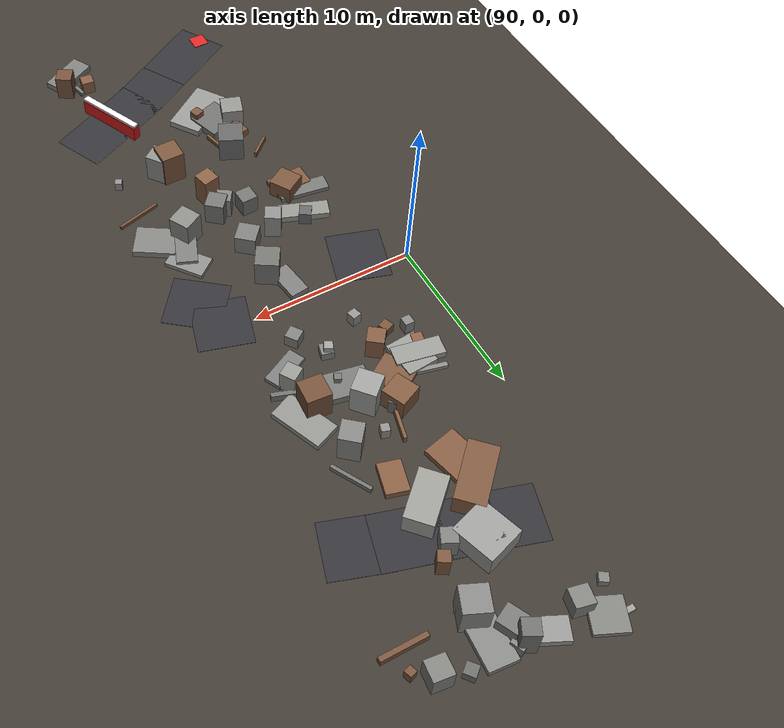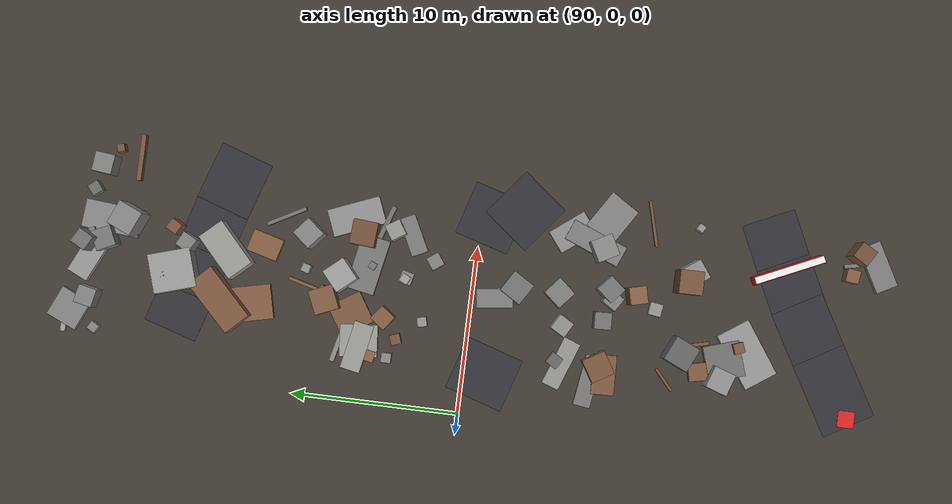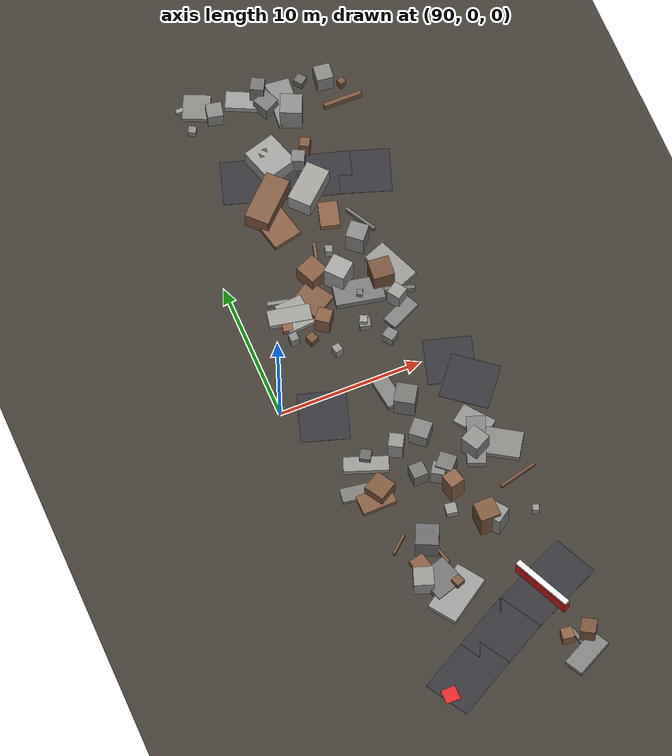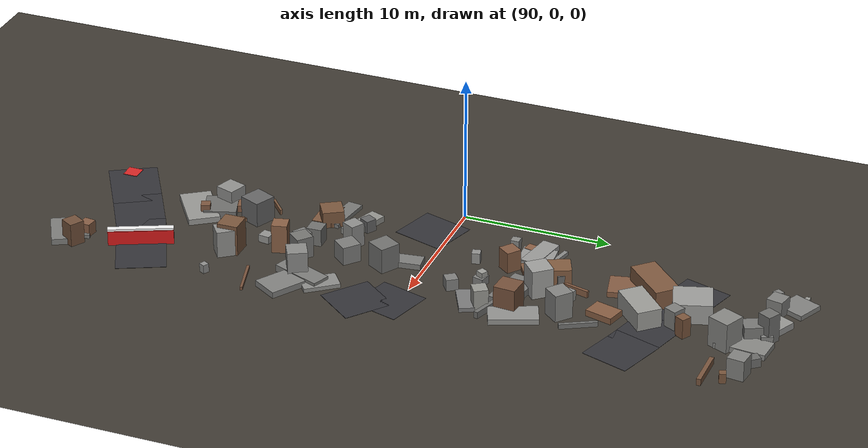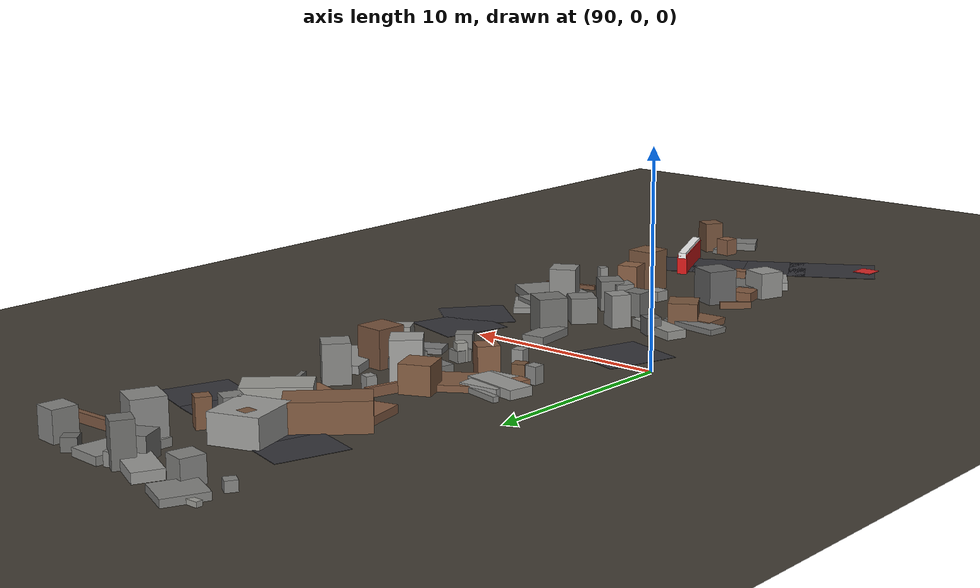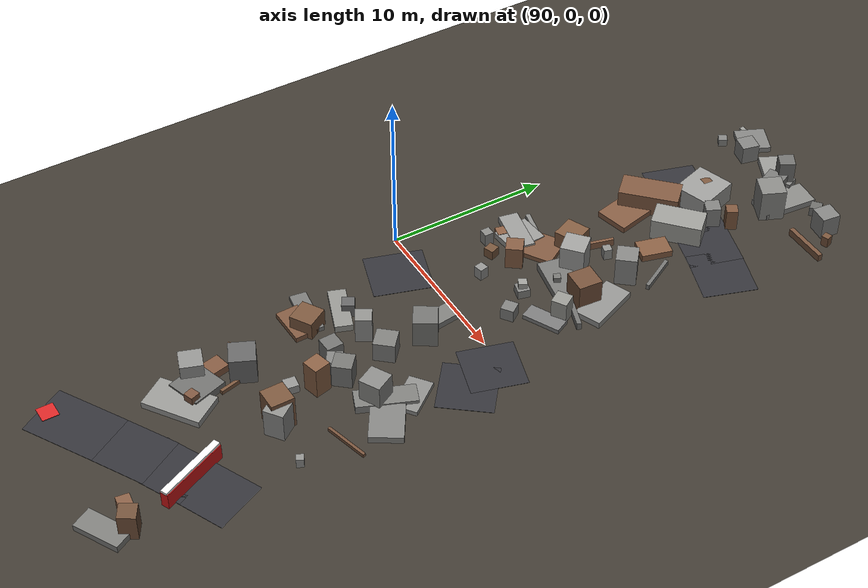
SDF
<sdf version="1.6">
 <world name="navitas_arena">
  <model name="ground_plane">
   <static>true</static>
   <link name="link">
    <collision name="collision">
     <geometry><plane><normal>0 0 1</normal><size>400 400</size></plane></geometry>
     <surface><friction><ode><mu>0.620</mu><mu2>0.620</mu2></ode></friction></surface>
    </collision>
    <visual name="visual">
     <cast_shadows>false</cast_shadows>
     <geometry><plane><normal>0 0 1</normal><size>400 400</size></plane></geometry>
     <material><ambient>0.250 0.230 0.200 1</ambient><diffuse>0.250 0.230 0.200 1</diffuse></material>
    </visual>
   </link>
  </model>
  <model name="road_zor_2_9">
   <static>true</static>
   <pose>92.559 -1.278 0.040 0 0 1.267</pose>
   <link name="link">
    <collision name="col"><geometry><box><size>3.578 3.280 0.020</size></box></geometry></collision>
    <visual name="vis">
     <geometry><box><size>3.578 3.280 0.020</size></box></geometry>
     <material><ambient>0.20 0.20 0.22 1</ambient><diffuse>0.20 0.20 0.22 1</diffuse></material>
    </visual>
   </link>
  </model>
  <model name="road_zor_3_0">
   <static>true</static>
   <pose>94.114 -22.070 0.040 0 0 0.527</pose>
   <link name="link">
    <collision name="col"><geometry><box><size>4.596 3.280 0.020</size></box></geometry></collision>
    <visual name="vis">
     <geometry><box><size>4.596 3.280 0.020</size></box></geometry>
     <material><ambient>0.20 0.20 0.22 1</ambient><diffuse>0.20 0.20 0.22 1</diffuse></material>
    </visual>
   </link>
  </model>
  <model name="road_zor_3_1">
   <static>true</static>
   <pose>97.148 -20.320 0.040 0 0 0.519</pose>
   <link name="link">
    <collision name="col"><geometry><box><size>4.208 3.280 0.020</size></box></geometry></collision>
    <visual name="vis">
     <geometry><box><size>4.208 3.280 0.020</size></box></geometry>
     <material><ambient>0.20 0.20 0.22 1</ambient><diffuse>0.20 0.20 0.22 1</diffuse></material>
    </visual>
   </link>
  </model>
  <model name="road_zor_3_2">
   <static>true</static>
   <pose>99.743 -18.930 0.040 0 0 0.457</pose>
   <link name="link">
    <collision name="col"><geometry><box><size>3.484 3.280 0.020</size></box></geometry></collision>
    <visual name="vis">
     <geometry><box><size>3.484 3.280 0.020</size></box></geometry>
     <material><ambient>0.20 0.20 0.22 1</ambient><diffuse>0.20 0.20 0.22 1</diffuse></material>
    </visual>
   </link>
  </model>
  <model name="road_zor_3_3">
   <static>true</static>
   <pose>102.188 -17.758 0.040 0 0 0.438</pose>
   <link name="link">
    <collision name="col"><geometry><box><size>3.738 3.280 0.020</size></box></geometry></collision>
    <visual name="vis">
     <geometry><box><size>3.738 3.280 0.020</size></box></geometry>
     <material><ambient>0.20 0.20 0.22 1</ambient><diffuse>0.20 0.20 0.22 1</diffuse></material>
    </visual>
   </link>
  </model>
  <model name="road_zor_3_11">
   <static>true</static>
   <pose>102.496 -2.556 0.040 0 0 2.472</pose>
   <link name="link">
    <collision name="col"><geometry><box><size>3.407 3.280 0.020</size></box></geometry></collision>
    <visual name="vis">
     <geometry><box><size>3.407 3.280 0.020</size></box></geometry>
     <material><ambient>0.20 0.20 0.22 1</ambient><diffuse>0.20 0.20 0.22 1</diffuse></material>
    </visual>
   </link>
  </model>
  <model name="road_zor_3_12">
   <static>true</static>
   <pose>101.854 -0.611 0.040 0 0 1.287</pose>
   <link name="link">
    <collision name="col"><geometry><box><size>3.331 3.280 0.020</size></box></geometry></collision>
    <visual name="vis">
     <geometry><box><size>3.331 3.280 0.020</size></box></geometry>
     <material><ambient>0.20 0.20 0.22 1</ambient><diffuse>0.20 0.20 0.22 1</diffuse></material>
    </visual>
   </link>
  </model>
  <model name="road_zor_3_20">
   <static>true</static>
   <pose>102.145 14.853 0.040 0 0 2.818</pose>
   <link name="link">
    <collision name="col"><geometry><box><size>3.534 3.280 0.020</size></box></geometry></collision>
    <visual name="vis">
     <geometry><box><size>3.534 3.280 0.020</size></box></geometry>
     <material><ambient>0.20 0.20 0.22 1</ambient><diffuse>0.20 0.20 0.22 1</diffuse></material>
    </visual>
   </link>
  </model>
  <model name="road_zor_3_21">
   <static>true</static>
   <pose>99.566 15.657 0.040 0 0 2.859</pose>
   <link name="link">
    <collision name="col"><geometry><box><size>3.670 3.280 0.020</size></box></geometry></collision>
    <visual name="vis">
     <geometry><box><size>3.670 3.280 0.020</size></box></geometry>
     <material><ambient>0.20 0.20 0.22 1</ambient><diffuse>0.20 0.20 0.22 1</diffuse></material>
    </visual>
   </link>
  </model>
  <model name="road_zor_3_22">
   <static>true</static>
   <pose>96.932 16.409 0.040 0 0 2.867</pose>
   <link name="link">
    <collision name="col"><geometry><box><size>3.610 3.280 0.020</size></box></geometry></collision>
    <visual name="vis">
     <geometry><box><size>3.610 3.280 0.020</size></box></geometry>
     <material><ambient>0.20 0.20 0.22 1</ambient><diffuse>0.20 0.20 0.22 1</diffuse></material>
    </visual>
   </link>
  </model>
  <model name="road_zor_3_23">
   <static>true</static>
   <pose>94.458 17.138 0.040 0 0 2.842</pose>
   <link name="link">
    <collision name="col"><geometry><box><size>3.349 3.280 0.020</size></box></geometry></collision>
    <visual name="vis">
     <geometry><box><size>3.349 3.280 0.020</size></box></geometry>
     <material><ambient>0.20 0.20 0.22 1</ambient><diffuse>0.20 0.20 0.22 1</diffuse></material>
    </visual>
   </link>
  </model>
  <model name="bar_zor_3">
   <static>true</static>
   <pose>100.903 -18.360 0.500 0 0 2.000</pose>
   <link name="link">
    <collision name="col"><geometry><box><size>4.280 0.500 1.000</size></box></geometry></collision>
    <visual name="vis">
     <geometry><box><size>4.280 0.500 1.000</size></box></geometry>
     <material><ambient>0.85 0.10 0.10 1</ambient><diffuse>0.85 0.10 0.10 1</diffuse></material>
    </visual>
   </link>
  </model>
  <model name="bar_zor_3b">
   <static>true</static>
   <pose>100.903 -18.360 1.000 0 0 2.000</pose>
   <link name="link">
    <collision name="col"><geometry><box><size>4.280 0.400 0.300</size></box></geometry></collision>
    <visual name="vis">
     <geometry><box><size>4.280 0.400 0.300</size></box></geometry>
     <material><ambient>0.95 0.95 0.95 1</ambient><diffuse>0.95 0.95 0.95 1</diffuse></material>
    </visual>
   </link>
  </model>
  <model name="blk_zor_3_2_0">
   <static>true</static>
   <pose>99.007 17.815 0.675 0 0 1.040</pose>
   <link name="link">
    <collision name="col"><geometry><box><size>0.687 0.687 1.350</size></box></geometry></collision>
    <visual name="vis">
     <geometry><box><size>0.687 0.687 1.350</size></box></geometry>
     <material><ambient>0.49 0.34 0.24 1</ambient><diffuse>0.49 0.34 0.24 1</diffuse></material>
    </visual>
   </link>
  </model>
  <model name="blk_zor_3_2_1">
   <static>true</static>
   <pose>96.085 18.061 0.675 0 0 1.500</pose>
   <link name="link">
    <collision name="col"><geometry><box><size>0.590 0.590 1.350</size></box></geometry></collision>
    <visual name="vis">
     <geometry><box><size>0.590 0.590 1.350</size></box></geometry>
     <material><ambient>0.48 0.34 0.24 1</ambient><diffuse>0.48 0.34 0.24 1</diffuse></material>
    </visual>
   </link>
  </model>
  <model name="blk_zor_3_2_2">
   <static>true</static>
   <pose>98.179 17.000 0.675 0 0 1.103</pose>
   <link name="link">
    <collision name="col"><geometry><box><size>0.901 0.901 1.350</size></box></geometry></collision>
    <visual name="vis">
     <geometry><box><size>0.901 0.901 1.350</size></box></geometry>
     <material><ambient>0.50 0.50 0.49 1</ambient><diffuse>0.50 0.50 0.49 1</diffuse></material>
    </visual>
   </link>
  </model>
  <model name="blk_zor_3_2_3">
   <static>true</static>
   <pose>98.016 14.685 0.675 0 0 0.737</pose>
   <link name="link">
    <collision name="col"><geometry><box><size>3.020 1.657 1.350</size></box></geometry></collision>
    <visual name="vis">
     <geometry><box><size>3.020 1.657 1.350</size></box></geometry>
     <material><ambient>0.61 0.61 0.59 1</ambient><diffuse>0.61 0.61 0.59 1</diffuse></material>
    </visual>
   </link>
  </model>
  <model name="blk_zor_3_2_4">
   <static>true</static>
   <pose>96.411 17.640 0.675 0 0 1.870</pose>
   <link name="link">
    <collision name="col"><geometry><box><size>2.521 2.330 1.350</size></box></geometry></collision>
    <visual name="vis">
     <geometry><box><size>2.521 2.330 1.350</size></box></geometry>
     <material><ambient>0.61 0.61 0.60 1</ambient><diffuse>0.61 0.61 0.60 1</diffuse></material>
    </visual>
   </link>
  </model>
  <model name="blk_zor_3_2_5">
   <static>true</static>
   <pose>95.046 14.737 0.675 0 0 0.774</pose>
   <link name="link">
    <collision name="col"><geometry><box><size>3.614 1.718 1.350</size></box></geometry></collision>
    <visual name="vis">
     <geometry><box><size>3.614 1.718 1.350</size></box></geometry>
     <material><ambient>0.50 0.35 0.25 1</ambient><diffuse>0.50 0.35 0.25 1</diffuse></material>
    </visual>
   </link>
  </model>
  <model name="deb_zor_4">
   <static>true</static>
   <pose>102.830 20.455 0.226 0 0 3.139</pose>
   <link name="link">
    <collision name="col"><geometry><box><size>2.724 0.284 0.452</size></box></geometry></collision>
    <visual name="vis">
     <geometry><box><size>2.724 0.284 0.452</size></box></geometry>
     <material><ambient>0.47 0.33 0.24 1</ambient><diffuse>0.47 0.33 0.24 1</diffuse></material>
    </visual>
   </link>
  </model>
  <model name="deb_zor_5">
   <static>true</static>
   <pose>97.608 4.045 0.449 0 0 2.645</pose>
   <link name="link">
    <collision name="col"><geometry><box><size>0.514 0.514 0.899</size></box></geometry></collision>
    <visual name="vis">
     <geometry><box><size>0.514 0.514 0.899</size></box></geometry>
     <material><ambient>0.62 0.62 0.60 1</ambient><diffuse>0.62 0.62 0.60 1</diffuse></material>
    </visual>
   </link>
  </model>
  <model name="deb_zor_6">
   <static>true</static>
   <pose>92.904 -7.455 0.138 0 0 2.997</pose>
   <link name="link">
    <collision name="col"><geometry><box><size>3.080 1.018 0.275</size></box></geometry></collision>
    <visual name="vis">
     <geometry><box><size>3.080 1.018 0.275</size></box></geometry>
     <material><ambient>0.47 0.47 0.46 1</ambient><diffuse>0.47 0.47 0.46 1</diffuse></material>
    </visual>
   </link>
  </model>
  <model name="deb_zor_11">
   <static>true</static>
   <pose>97.630 -10.904 0.257 0 0 1.429</pose>
   <link name="link">
    <collision name="col"><geometry><box><size>0.754 0.754 0.514</size></box></geometry></collision>
    <visual name="vis">
     <geometry><box><size>0.754 0.754 0.514</size></box></geometry>
     <material><ambient>0.58 0.58 0.57 1</ambient><diffuse>0.58 0.58 0.57 1</diffuse></material>
    </visual>
   </link>
  </model>
  <model name="deb_zor_12">
   <static>true</static>
   <pose>93.540 -11.910 0.174 0 0 0.720</pose>
   <link name="link">
    <collision name="col"><geometry><box><size>1.564 0.159 0.348</size></box></geometry></collision>
    <visual name="vis">
     <geometry><box><size>1.564 0.159 0.348</size></box></geometry>
     <material><ambient>0.48 0.34 0.24 1</ambient><diffuse>0.48 0.34 0.24 1</diffuse></material>
    </visual>
   </link>
  </model>
  <model name="deb_zor_16">
   <static>true</static>
   <pose>100.007 -12.819 0.909 0 0 0.639</pose>
   <link name="link">
    <collision name="col"><geometry><box><size>1.208 1.208 1.818</size></box></geometry></collision>
    <visual name="vis">
     <geometry><box><size>1.208 1.208 1.818</size></box></geometry>
     <material><ambient>0.56 0.56 0.55 1</ambient><diffuse>0.56 0.56 0.55 1</diffuse></material>
    </visual>
   </link>
  </model>
  <model name="deb_zor_19">
   <static>true</static>
   <pose>102.680 -10.200 0.111 0 0 0.257</pose>
   <link name="link">
    <collision name="col"><geometry><box><size>2.739 0.179 0.222</size></box></geometry></collision>
    <visual name="vis">
     <geometry><box><size>2.739 0.179 0.222</size></box></geometry>
     <material><ambient>0.46 0.32 0.23 1</ambient><diffuse>0.46 0.32 0.23 1</diffuse></material>
    </visual>
   </link>
  </model>
  <model name="deb_zor_20">
   <static>true</static>
   <pose>95.804 8.615 0.669 0 0 1.978</pose>
   <link name="link">
    <collision name="col"><geometry><box><size>1.463 1.463 1.339</size></box></geometry></collision>
    <visual name="vis">
     <geometry><box><size>1.463 1.463 1.339</size></box></geometry>
     <material><ambient>0.51 0.36 0.25 1</ambient><diffuse>0.51 0.36 0.25 1</diffuse></material>
    </visual>
   </link>
  </model>
  <model name="deb_zor_22">
   <static>true</static>
   <pose>100.928 7.356 0.194 0 0 1.957</pose>
   <link name="link">
    <collision name="col"><geometry><box><size>3.211 1.651 0.389</size></box></geometry></collision>
    <visual name="vis">
     <geometry><box><size>3.211 1.651 0.389</size></box></geometry>
     <material><ambient>0.57 0.57 0.56 1</ambient><diffuse>0.57 0.57 0.56 1</diffuse></material>
    </visual>
   </link>
  </model>
  <model name="deb_zor_28">
   <static>true</static>
   <pose>96.591 -7.816 0.597 0 0 1.609</pose>
   <link name="link">
    <collision name="col"><geometry><box><size>1.005 1.005 1.194</size></box></geometry></collision>
    <visual name="vis">
     <geometry><box><size>1.005 1.005 1.194</size></box></geometry>
     <material><ambient>0.45 0.45 0.44 1</ambient><diffuse>0.45 0.45 0.44 1</diffuse></material>
    </visual>
   </link>
  </model>
  <model name="deb_zor_34">
   <static>true</static>
   <pose>93.757 -5.739 0.208 0 0 2.790</pose>
   <link name="link">
    <collision name="col"><geometry><box><size>3.011 1.058 0.415</size></box></geometry></collision>
    <visual name="vis">
     <geometry><box><size>3.011 1.058 0.415</size></box></geometry>
     <material><ambient>0.58 0.58 0.56 1</ambient><diffuse>0.58 0.58 0.56 1</diffuse></material>
    </visual>
   </link>
  </model>
  <model name="deb_zor_37">
   <static>true</static>
   <pose>95.074 -15.293 0.256 0 0 0.313</pose>
   <link name="link">
    <collision name="col"><geometry><box><size>2.137 2.176 0.511</size></box></geometry></collision>
    <visual name="vis">
     <geometry><box><size>2.137 2.176 0.511</size></box></geometry>
     <material><ambient>0.44 0.44 0.43 1</ambient><diffuse>0.44 0.44 0.43 1</diffuse></material>
    </visual>
   </link>
  </model>
  <model name="deb_zor_39">
   <static>true</static>
   <pose>93.729 -7.793 0.235 0 0 0.759</pose>
   <link name="link">
    <collision name="col"><geometry><box><size>0.724 0.724 0.469</size></box></geometry></collision>
    <visual name="vis">
     <geometry><box><size>0.724 0.724 0.469</size></box></geometry>
     <material><ambient>0.52 0.52 0.51 1</ambient><diffuse>0.52 0.52 0.51 1</diffuse></material>
    </visual>
   </link>
  </model>
  <model name="deb_zor_40">
   <static>true</static>
   <pose>96.606 22.870 0.226 0 0 2.699</pose>
   <link name="link">
    <collision name="col"><geometry><box><size>2.562 1.298 0.452</size></box></geometry></collision>
    <visual name="vis">
     <geometry><box><size>2.562 1.298 0.452</size></box></geometry>
     <material><ambient>0.59 0.59 0.58 1</ambient><diffuse>0.59 0.59 0.58 1</diffuse></material>
    </visual>
   </link>
  </model>
  <model name="deb_zor_48">
   <static>true</static>
   <pose>95.961 -16.003 0.440 0 0 1.926</pose>
   <link name="link">
    <collision name="col"><geometry><box><size>0.612 0.612 0.880</size></box></geometry></collision>
    <visual name="vis">
     <geometry><box><size>0.612 0.612 0.880</size></box></geometry>
     <material><ambient>0.49 0.34 0.25 1</ambient><diffuse>0.49 0.34 0.25 1</diffuse></material>
    </visual>
   </link>
  </model>
  <model name="deb_zor_52">
   <static>true</static>
   <pose>93.981 4.199 0.306 0 0 1.929</pose>
   <link name="link">
    <collision name="col"><geometry><box><size>0.616 0.616 0.611</size></box></geometry></collision>
    <visual name="vis">
     <geometry><box><size>0.616 0.616 0.611</size></box></geometry>
     <material><ambient>0.46 0.33 0.23 1</ambient><diffuse>0.46 0.33 0.23 1</diffuse></material>
    </visual>
   </link>
  </model>
  <model name="deb_zor_57">
   <static>true</static>
   <pose>100.446 11.480 0.160 0 0 2.069</pose>
   <link name="link">
    <collision name="col"><geometry><box><size>2.480 0.213 0.321</size></box></geometry></collision>
    <visual name="vis">
     <geometry><box><size>2.480 0.213 0.321</size></box></geometry>
     <material><ambient>0.45 0.45 0.44 1</ambient><diffuse>0.45 0.45 0.44 1</diffuse></material>
    </visual>
   </link>
  </model>
  <model name="deb_zor_63">
   <static>true</static>
   <pose>102.662 -7.720 0.209 0 0 2.579</pose>
   <link name="link">
    <collision name="col"><geometry><box><size>2.515 1.942 0.417</size></box></geometry></collision>
    <visual name="vis">
     <geometry><box><size>2.515 1.942 0.417</size></box></geometry>
     <material><ambient>0.51 0.51 0.50 1</ambient><diffuse>0.51 0.51 0.50 1</diffuse></material>
    </visual>
   </link>
  </model>
  <model name="deb_zor_66">
   <static>true</static>
   <pose>99.565 9.892 0.924 0 0 0.870</pose>
   <link name="link">
    <collision name="col"><geometry><box><size>1.260 1.260 1.847</size></box></geometry></collision>
    <visual name="vis">
     <geometry><box><size>1.260 1.260 1.847</size></box></geometry>
     <material><ambient>0.52 0.52 0.51 1</ambient><diffuse>0.52 0.52 0.51 1</diffuse></material>
    </visual>
   </link>
  </model>
  <model name="deb_zor_67">
   <static>true</static>
   <pose>101.101 -6.913 0.243 0 0 1.189</pose>
   <link name="link">
    <collision name="col"><geometry><box><size>3.487 1.273 0.485</size></box></geometry></collision>
    <visual name="vis">
     <geometry><box><size>3.487 1.273 0.485</size></box></geometry>
     <material><ambient>0.49 0.49 0.48 1</ambient><diffuse>0.49 0.49 0.48 1</diffuse></material>
    </visual>
   </link>
  </model>
  <model name="deb_zor_68">
   <static>true</static>
   <pose>93.853 -7.879 0.561 0 0 0.545</pose>
   <link name="link">
    <collision name="col"><geometry><box><size>1.437 1.437 1.122</size></box></geometry></collision>
    <visual name="vis">
     <geometry><box><size>1.437 1.437 1.122</size></box></geometry>
     <material><ambient>0.48 0.34 0.24 1</ambient><diffuse>0.48 0.34 0.24 1</diffuse></material>
    </visual>
   </link>
  </model>
  <model name="deb_zor_69">
   <static>true</static>
   <pose>93.121 7.623 0.128 0 0 2.907</pose>
   <link name="link">
    <collision name="col"><geometry><box><size>1.851 0.283 0.256</size></box></geometry></collision>
    <visual name="vis">
     <geometry><box><size>1.851 0.283 0.256</size></box></geometry>
     <material><ambient>0.54 0.54 0.53 1</ambient><diffuse>0.54 0.54 0.53 1</diffuse></material>
    </visual>
   </link>
  </model>
  <model name="deb_zor_72">
   <static>true</static>
   <pose>96.562 9.882 0.230 0 0 1.309</pose>
   <link name="link">
    <collision name="col"><geometry><box><size>2.072 0.191 0.460</size></box></geometry></collision>
    <visual name="vis">
     <geometry><box><size>2.072 0.191 0.460</size></box></geometry>
     <material><ambient>0.52 0.36 0.26 1</ambient><diffuse>0.52 0.36 0.26 1</diffuse></material>
    </visual>
   </link>
  </model>
  <model name="deb_zor_74">
   <static>true</static>
   <pose>102.197 22.360 0.702 0 0 3.022</pose>
   <link name="link">
    <collision name="col"><geometry><box><size>1.153 1.153 1.404</size></box></geometry></collision>
    <visual name="vis">
     <geometry><box><size>1.153 1.153 1.404</size></box></geometry>
     <material><ambient>0.51 0.51 0.50 1</ambient><diffuse>0.51 0.51 0.50 1</diffuse></material>
    </visual>
   </link>
  </model>
  <model name="deb_zor_78">
   <static>true</static>
   <pose>102.345 -22.510 0.797 0 0 2.604</pose>
   <link name="link">
    <collision name="col"><geometry><box><size>1.017 1.017 1.594</size></box></geometry></collision>
    <visual name="vis">
     <geometry><box><size>1.017 1.017 1.594</size></box></geometry>
     <material><ambient>0.45 0.32 0.23 1</ambient><diffuse>0.45 0.32 0.23 1</diffuse></material>
    </visual>
   </link>
  </model>
  <model name="deb_zor_81">
   <static>true</static>
   <pose>97.899 -2.554 0.865 0 0 1.018</pose>
   <link name="link">
    <collision name="col"><geometry><box><size>1.414 1.414 1.729</size></box></geometry></collision>
    <visual name="vis">
     <geometry><box><size>1.414 1.414 1.729</size></box></geometry>
     <material><ambient>0.45 0.45 0.44 1</ambient><diffuse>0.45 0.45 0.44 1</diffuse></material>
    </visual>
   </link>
  </model>
  <model name="deb_zor_85">
   <static>true</static>
   <pose>97.680 3.986 0.273 0 0 1.314</pose>
   <link name="link">
    <collision name="col"><geometry><box><size>0.743 0.743 0.547</size></box></geometry></collision>
    <visual name="vis">
     <geometry><box><size>0.743 0.743 0.547</size></box></geometry>
     <material><ambient>0.51 0.51 0.50 1</ambient><diffuse>0.51 0.51 0.50 1</diffuse></material>
    </visual>
   </link>
  </model>
  <model name="deb_zor_87">
   <static>true</static>
   <pose>97.858 -8.267 0.662 0 0 2.569</pose>
   <link name="link">
    <collision name="col"><geometry><box><size>0.915 0.915 1.325</size></box></geometry></collision>
    <visual name="vis">
     <geometry><box><size>0.915 0.915 1.325</size></box></geometry>
     <material><ambient>0.51 0.51 0.50 1</ambient><diffuse>0.51 0.51 0.50 1</diffuse></material>
    </visual>
   </link>
  </model>
  <model name="deb_zor_89">
   <static>true</static>
   <pose>101.765 -22.800 0.126 0 0 1.796</pose>
   <link name="link">
    <collision name="col"><geometry><box><size>2.128 0.241 0.252</size></box></geometry></collision>
    <visual name="vis">
     <geometry><box><size>2.128 0.241 0.252</size></box></geometry>
     <material><ambient>0.46 0.46 0.45 1</ambient><diffuse>0.46 0.46 0.45 1</diffuse></material>
    </visual>
   </link>
  </model>
  <model name="deb_zor_101">
   <static>true</static>
   <pose>99.968 6.694 0.911 0 0 1.492</pose>
   <link name="link">
    <collision name="col"><geometry><box><size>1.457 1.457 1.822</size></box></geometry></collision>
    <visual name="vis">
     <geometry><box><size>1.457 1.457 1.822</size></box></geometry>
     <material><ambient>0.46 0.32 0.23 1</ambient><diffuse>0.46 0.32 0.23 1</diffuse></material>
    </visual>
   </link>
  </model>
  <model name="deb_zor_102">
   <static>true</static>
   <pose>95.233 -12.573 0.845 0 0 1.143</pose>
   <link name="link">
    <collision name="col"><geometry><box><size>1.530 1.530 1.690</size></box></geometry></collision>
    <visual name="vis">
     <geometry><box><size>1.530 1.530 1.690</size></box></geometry>
     <material><ambient>0.40 0.40 0.40 1</ambient><diffuse>0.40 0.40 0.40 1</diffuse></material>
    </visual>
   </link>
  </model>
  <model name="deb_zor_104">
   <static>true</static>
   <pose>95.752 -13.197 0.130 0 0 1.815</pose>
   <link name="link">
    <collision name="col"><geometry><box><size>2.333 0.197 0.259</size></box></geometry></collision>
    <visual name="vis">
     <geometry><box><size>2.333 0.197 0.259</size></box></geometry>
     <material><ambient>0.48 0.34 0.24 1</ambient><diffuse>0.48 0.34 0.24 1</diffuse></material>
    </visual>
   </link>
  </model>
  <model name="deb_zor_105">
   <static>true</static>
   <pose>101.012 -22.174 0.436 0 0 1.439</pose>
   <link name="link">
    <collision name="col"><geometry><box><size>0.775 0.775 0.871</size></box></geometry></collision>
    <visual name="vis">
     <geometry><box><size>0.775 0.775 0.871</size></box></geometry>
     <material><ambient>0.53 0.37 0.27 1</ambient><diffuse>0.53 0.37 0.27 1</diffuse></material>
    </visual>
   </link>
  </model>
  <model name="deb_zor_106">
   <static>true</static>
   <pose>92.953 5.991 0.139 0 0 2.591</pose>
   <link name="link">
    <collision name="col"><geometry><box><size>1.912 0.256 0.277</size></box></geometry></collision>
    <visual name="vis">
     <geometry><box><size>1.912 0.256 0.277</size></box></geometry>
     <material><ambient>0.42 0.42 0.41 1</ambient><diffuse>0.42 0.42 0.41 1</diffuse></material>
    </visual>
   </link>
  </model>
  <model name="deb_zor_108">
   <static>true</static>
   <pose>99.448 -12.550 1.044 0 0 1.577</pose>
   <link name="link">
    <collision name="col"><geometry><box><size>1.391 1.391 2.089</size></box></geometry></collision>
    <visual name="vis">
     <geometry><box><size>1.391 1.391 2.089</size></box></geometry>
     <material><ambient>0.48 0.34 0.24 1</ambient><diffuse>0.48 0.34 0.24 1</diffuse></material>
    </visual>
   </link>
  </model>
  <model name="deb_zor_111">
   <static>true</static>
   <pose>100.231 3.888 0.138 0 0 0.459</pose>
   <link name="link">
    <collision name="col"><geometry><box><size>2.351 1.011 0.276</size></box></geometry></collision>
    <visual name="vis">
     <geometry><box><size>2.351 1.011 0.276</size></box></geometry>
     <material><ambient>0.48 0.48 0.48 1</ambient><diffuse>0.48 0.48 0.48 1</diffuse></material>
    </visual>
   </link>
  </model>
  <model name="deb_zor_112">
   <static>true</static>
   <pose>93.402 -8.337 0.161 0 0 0.026</pose>
   <link name="link">
    <collision name="col"><geometry><box><size>2.367 1.374 0.323</size></box></geometry></collision>
    <visual name="vis">
     <geometry><box><size>2.367 1.374 0.323</size></box></geometry>
     <material><ambient>0.50 0.35 0.25 1</ambient><diffuse>0.50 0.35 0.25 1</diffuse></material>
    </visual>
   </link>
  </model>
  <model name="deb_zor_115">
   <static>true</static>
   <pose>94.324 22.560 0.580 0 0 1.355</pose>
   <link name="link">
    <collision name="col"><geometry><box><size>1.084 1.084 1.159</size></box></geometry></collision>
    <visual name="vis">
     <geometry><box><size>1.084 1.084 1.159</size></box></geometry>
     <material><ambient>0.51 0.51 0.50 1</ambient><diffuse>0.51 0.51 0.50 1</diffuse></material>
    </visual>
   </link>
  </model>
  <model name="deb_zor_120">
   <static>true</static>
   <pose>100.709 22.904 0.298 0 0 2.247</pose>
   <link name="link">
    <collision name="col"><geometry><box><size>0.673 0.673 0.597</size></box></geometry></collision>
    <visual name="vis">
     <geometry><box><size>0.673 0.673 0.597</size></box></geometry>
     <material><ambient>0.42 0.42 0.41 1</ambient><diffuse>0.42 0.42 0.41 1</diffuse></material>
    </visual>
   </link>
  </model>
  <model name="deb_zor_125">
   <static>true</static>
   <pose>93.161 23.919 0.110 0 0 3.138</pose>
   <link name="link">
    <collision name="col"><geometry><box><size>2.251 0.299 0.221</size></box></geometry></collision>
    <visual name="vis">
     <geometry><box><size>2.251 0.299 0.221</size></box></geometry>
     <material><ambient>0.61 0.61 0.59 1</ambient><diffuse>0.61 0.61 0.59 1</diffuse></material>
    </visual>
   </link>
  </model>
  <model name="deb_zor_130">
   <static>true</static>
   <pose>92.509 22.086 0.230 0 0 2.587</pose>
   <link name="link">
    <collision name="col"><geometry><box><size>0.528 0.528 0.461</size></box></geometry></collision>
    <visual name="vis">
     <geometry><box><size>0.528 0.528 0.461</size></box></geometry>
     <material><ambient>0.51 0.51 0.50 1</ambient><diffuse>0.51 0.51 0.50 1</diffuse></material>
    </visual>
   </link>
  </model>
  <model name="deb_zor_132">
   <static>true</static>
   <pose>95.152 7.024 0.151 0 0 2.129</pose>
   <link name="link">
    <collision name="col"><geometry><box><size>2.103 1.995 0.302</size></box></geometry></collision>
    <visual name="vis">
     <geometry><box><size>2.103 1.995 0.302</size></box></geometry>
     <material><ambient>0.50 0.35 0.25 1</ambient><diffuse>0.50 0.35 0.25 1</diffuse></material>
    </visual>
   </link>
  </model>
  <model name="deb_zor_145">
   <static>true</static>
   <pose>98.197 6.347 0.239 0 0 2.949</pose>
   <link name="link">
    <collision name="col"><geometry><box><size>3.346 1.709 0.477</size></box></geometry></collision>
    <visual name="vis">
     <geometry><box><size>3.346 1.709 0.477</size></box></geometry>
     <material><ambient>0.47 0.47 0.46 1</ambient><diffuse>0.47 0.47 0.46 1</diffuse></material>
    </visual>
   </link>
  </model>
  <model name="deb_zor_146">
   <static>true</static>
   <pose>92.839 4.594 0.405 0 0 3.135</pose>
   <link name="link">
    <collision name="col"><geometry><box><size>0.575 0.575 0.811</size></box></geometry></collision>
    <visual name="vis">
     <geometry><box><size>0.575 0.575 0.811</size></box></geometry>
     <material><ambient>0.53 0.53 0.52 1</ambient><diffuse>0.53 0.53 0.52 1</diffuse></material>
    </visual>
   </link>
  </model>
  <model name="deb_zor_147">
   <static>true</static>
   <pose>93.907 -5.296 0.420 0 0 2.600</pose>
   <link name="link">
    <collision name="col"><geometry><box><size>0.744 0.744 0.840</size></box></geometry></collision>
    <visual name="vis">
     <geometry><box><size>0.744 0.744 0.840</size></box></geometry>
     <material><ambient>0.40 0.40 0.40 1</ambient><diffuse>0.40 0.40 0.40 1</diffuse></material>
    </visual>
   </link>
  </model>
  <model name="deb_zor_151">
   <static>true</static>
   <pose>102.749 -13.000 0.298 0 0 2.652</pose>
   <link name="link">
    <collision name="col"><geometry><box><size>0.426 0.426 0.595</size></box></geometry></collision>
    <visual name="vis">
     <geometry><box><size>0.426 0.426 0.595</size></box></geometry>
     <material><ambient>0.56 0.56 0.55 1</ambient><diffuse>0.56 0.56 0.55 1</diffuse></material>
    </visual>
   </link>
  </model>
  <model name="deb_zor_153">
   <static>true</static>
   <pose>97.906 -5.091 0.628 0 0 2.429</pose>
   <link name="link">
    <collision name="col"><geometry><box><size>1.270 1.270 1.256</size></box></geometry></collision>
    <visual name="vis">
     <geometry><box><size>1.270 1.270 1.256</size></box></geometry>
     <material><ambient>0.49 0.49 0.48 1</ambient><diffuse>0.49 0.49 0.48 1</diffuse></material>
    </visual>
   </link>
  </model>
  <model name="deb_zor_159">
   <static>true</static>
   <pose>97.829 21.924 0.560 0 0 2.013</pose>
   <link name="link">
    <collision name="col"><geometry><box><size>1.200 1.200 1.121</size></box></geometry></collision>
    <visual name="vis">
     <geometry><box><size>1.200 1.200 1.121</size></box></geometry>
     <material><ambient>0.47 0.47 0.46 1</ambient><diffuse>0.47 0.47 0.46 1</diffuse></material>
    </visual>
   </link>
  </model>
  <model name="deb_zor_161">
   <static>true</static>
   <pose>96.016 -5.448 0.805 0 0 2.620</pose>
   <link name="link">
    <collision name="col"><geometry><box><size>0.979 0.979 1.611</size></box></geometry></collision>
    <visual name="vis">
     <geometry><box><size>0.979 0.979 1.611</size></box></geometry>
     <material><ambient>0.56 0.56 0.55 1</ambient><diffuse>0.56 0.56 0.55 1</diffuse></material>
    </visual>
   </link>
  </model>
  <model name="deb_zor_164">
   <static>true</static>
   <pose>95.617 -16.614 0.203 0 0 0.606</pose>
   <link name="link">
    <collision name="col"><geometry><box><size>3.593 2.096 0.407</size></box></geometry></collision>
    <visual name="vis">
     <geometry><box><size>3.593 2.096 0.407</size></box></geometry>
     <material><ambient>0.59 0.59 0.58 1</ambient><diffuse>0.59 0.59 0.58 1</diffuse></material>
    </visual>
   </link>
  </model>
  <model name="deb_zor_165">
   <static>true</static>
   <pose>92.814 5.647 0.208 0 0 1.348</pose>
   <link name="link">
    <collision name="col"><geometry><box><size>0.664 0.664 0.417</size></box></geometry></collision>
    <visual name="vis">
     <geometry><box><size>0.664 0.664 0.417</size></box></geometry>
     <material><ambient>0.55 0.38 0.27 1</ambient><diffuse>0.55 0.38 0.27 1</diffuse></material>
    </visual>
   </link>
  </model>
  <model name="deb_zor_169">
   <static>true</static>
   <pose>98.583 12.538 0.214 0 0 1.304</pose>
   <link name="link">
    <collision name="col"><geometry><box><size>1.874 1.326 0.428</size></box></geometry></collision>
    <visual name="vis">
     <geometry><box><size>1.874 1.326 0.428</size></box></geometry>
     <material><ambient>0.53 0.37 0.26 1</ambient><diffuse>0.53 0.37 0.26 1</diffuse></material>
    </visual>
   </link>
  </model>
  <model name="deb_zor_172">
   <static>true</static>
   <pose>95.016 13.099 0.187 0 0 1.796</pose>
   <link name="link">
    <collision name="col"><geometry><box><size>2.771 2.072 0.374</size></box></geometry></collision>
    <visual name="vis">
     <geometry><box><size>2.771 2.072 0.374</size></box></geometry>
     <material><ambient>0.52 0.36 0.26 1</ambient><diffuse>0.52 0.36 0.26 1</diffuse></material>
    </visual>
   </link>
  </model>
  <model name="deb_zor_174">
   <static>true</static>
   <pose>97.128 -1.336 0.193 0 0 1.700</pose>
   <link name="link">
    <collision name="col"><geometry><box><size>2.158 1.138 0.387</size></box></geometry></collision>
    <visual name="vis">
     <geometry><box><size>2.158 1.138 0.387</size></box></geometry>
     <material><ambient>0.49 0.49 0.48 1</ambient><diffuse>0.49 0.49 0.48 1</diffuse></material>
    </visual>
   </link>
  </model>
  <model name="deb_zor_176">
   <static>true</static>
   <pose>100.801 5.511 0.228 0 0 2.813</pose>
   <link name="link">
    <collision name="col"><geometry><box><size>2.082 0.278 0.455</size></box></geometry></collision>
    <visual name="vis">
     <geometry><box><size>2.082 0.278 0.455</size></box></geometry>
     <material><ambient>0.44 0.44 0.43 1</ambient><diffuse>0.44 0.44 0.43 1</diffuse></material>
    </visual>
   </link>
  </model>
  <model name="deb_zor_185">
   <static>true</static>
   <pose>99.059 21.760 0.188 0 0 1.482</pose>
   <link name="link">
    <collision name="col"><geometry><box><size>3.404 1.682 0.376</size></box></geometry></collision>
    <visual name="vis">
     <geometry><box><size>3.404 1.682 0.376</size></box></geometry>
     <material><ambient>0.53 0.53 0.52 1</ambient><diffuse>0.53 0.53 0.52 1</diffuse></material>
    </visual>
   </link>
  </model>
  <model name="deb_zor_188">
   <static>true</static>
   <pose>98.846 2.389 0.395 0 0 2.190</pose>
   <link name="link">
    <collision name="col"><geometry><box><size>0.796 0.796 0.789</size></box></geometry></collision>
    <visual name="vis">
     <geometry><box><size>0.796 0.796 0.789</size></box></geometry>
     <material><ambient>0.50 0.50 0.49 1</ambient><diffuse>0.50 0.50 0.49 1</diffuse></material>
    </visual>
   </link>
  </model>
  <model name="deb_zor_190">
   <static>true</static>
   <pose>93.935 -15.085 0.663 0 0 1.235</pose>
   <link name="link">
    <collision name="col"><geometry><box><size>1.331 1.331 1.326</size></box></geometry></collision>
    <visual name="vis">
     <geometry><box><size>1.331 1.331 1.326</size></box></geometry>
     <material><ambient>0.57 0.57 0.56 1</ambient><diffuse>0.57 0.57 0.56 1</diffuse></material>
    </visual>
   </link>
  </model>
  <model name="deb_zor_198">
   <static>true</static>
   <pose>93.251 6.403 0.216 0 0 2.947</pose>
   <link name="link">
    <collision name="col"><geometry><box><size>2.908 1.189 0.431</size></box></geometry></collision>
    <visual name="vis">
     <geometry><box><size>2.908 1.189 0.431</size></box></geometry>
     <material><ambient>0.60 0.60 0.59 1</ambient><diffuse>0.60 0.60 0.59 1</diffuse></material>
    </visual>
   </link>
  </model>
  <model name="deb_zor_200">
   <static>true</static>
   <pose>97.520 9.944 0.348 0 0 1.266</pose>
   <link name="link">
    <collision name="col"><geometry><box><size>0.499 0.499 0.697</size></box></geometry></collision>
    <visual name="vis">
     <geometry><box><size>0.499 0.499 0.697</size></box></geometry>
     <material><ambient>0.56 0.56 0.55 1</ambient><diffuse>0.56 0.56 0.55 1</diffuse></material>
    </visual>
   </link>
  </model>
  <model name="deb_zor_201">
   <static>true</static>
   <pose>101.582 -5.490 0.138 0 0 2.227</pose>
   <link name="link">
    <collision name="col"><geometry><box><size>2.409 1.453 0.277</size></box></geometry></collision>
    <visual name="vis">
     <geometry><box><size>2.409 1.453 0.277</size></box></geometry>
     <material><ambient>0.55 0.55 0.54 1</ambient><diffuse>0.55 0.55 0.54 1</diffuse></material>
    </visual>
   </link>
  </model>
  <model name="deb_zor_209">
   <static>true</static>
   <pose>100.382 4.908 0.708 0 0 2.142</pose>
   <link name="link">
    <collision name="col"><geometry><box><size>0.947 0.947 1.415</size></box></geometry></collision>
    <visual name="vis">
     <geometry><box><size>0.947 0.947 1.415</size></box></geometry>
     <material><ambient>0.59 0.59 0.57 1</ambient><diffuse>0.59 0.59 0.57 1</diffuse></material>
    </visual>
   </link>
  </model>
  <model name="deb_zor_212">
   <static>true</static>
   <pose>95.180 5.034 0.721 0 0 2.490</pose>
   <link name="link">
    <collision name="col"><geometry><box><size>1.018 1.018 1.443</size></box></geometry></collision>
    <visual name="vis">
     <geometry><box><size>1.018 1.018 1.443</size></box></geometry>
     <material><ambient>0.52 0.36 0.26 1</ambient><diffuse>0.52 0.36 0.26 1</diffuse></material>
    </visual>
   </link>
  </model>
  <model name="deb_zor_217">
   <static>true</static>
   <pose>93.627 6.365 0.192 0 0 1.652</pose>
   <link name="link">
    <collision name="col"><geometry><box><size>2.245 1.917 0.383</size></box></geometry></collision>
    <visual name="vis">
     <geometry><box><size>2.245 1.917 0.383</size></box></geometry>
     <material><ambient>0.60 0.60 0.59 1</ambient><diffuse>0.60 0.60 0.59 1</diffuse></material>
    </visual>
   </link>
  </model>
  <model name="deb_zor_225">
   <static>true</static>
   <pose>97.364 7.768 0.986 0 0 0.711</pose>
   <link name="link">
    <collision name="col"><geometry><box><size>1.453 1.453 1.971</size></box></geometry></collision>
    <visual name="vis">
     <geometry><box><size>1.453 1.453 1.971</size></box></geometry>
     <material><ambient>0.62 0.62 0.61 1</ambient><diffuse>0.62 0.62 0.61 1</diffuse></material>
    </visual>
   </link>
  </model>
  <model name="deb_zor_226">
   <static>true</static>
   <pose>93.447 23.686 0.169 0 0 1.150</pose>
   <link name="link">
    <collision name="col"><geometry><box><size>1.914 1.882 0.337</size></box></geometry></collision>
    <visual name="vis">
     <geometry><box><size>1.914 1.882 0.337</size></box></geometry>
     <material><ambient>0.51 0.51 0.50 1</ambient><diffuse>0.51 0.51 0.50 1</diffuse></material>
    </visual>
   </link>
  </model>
  <model name="deb_zor_229">
   <static>true</static>
   <pose>96.201 8.852 0.472 0 0 0.680</pose>
   <link name="link">
    <collision name="col"><geometry><box><size>0.649 0.649 0.944</size></box></geometry></collision>
    <visual name="vis">
     <geometry><box><size>0.649 0.649 0.944</size></box></geometry>
     <material><ambient>0.42 0.42 0.41 1</ambient><diffuse>0.42 0.42 0.41 1</diffuse></material>
    </visual>
   </link>
  </model>
  <model name="deb_zor_240">
   <static>true</static>
   <pose>95.203 2.750 0.372 0 0 0.197</pose>
   <link name="link">
    <collision name="col"><geometry><box><size>0.559 0.559 0.745</size></box></geometry></collision>
    <visual name="vis">
     <geometry><box><size>0.559 0.559 0.745</size></box></geometry>
     <material><ambient>0.57 0.57 0.56 1</ambient><diffuse>0.57 0.57 0.56 1</diffuse></material>
    </visual>
   </link>
  </model>
  <model name="deb_zor_245">
   <static>true</static>
   <pose>98.472 -8.056 0.738 0 0 2.433</pose>
   <link name="link">
    <collision name="col"><geometry><box><size>1.154 1.154 1.477</size></box></geometry></collision>
    <visual name="vis">
     <geometry><box><size>1.154 1.154 1.477</size></box></geometry>
     <material><ambient>0.46 0.46 0.45 1</ambient><diffuse>0.46 0.46 0.45 1</diffuse></material>
    </visual>
   </link>
  </model>
  <model name="deb_zor_252">
   <static>true</static>
   <pose>97.936 22.881 0.302 0 0 0.385</pose>
   <link name="link">
    <collision name="col"><geometry><box><size>0.755 0.755 0.605</size></box></geometry></collision>
    <visual name="vis">
     <geometry><box><size>0.755 0.755 0.605</size></box></geometry>
     <material><ambient>0.51 0.51 0.50 1</ambient><diffuse>0.51 0.51 0.50 1</diffuse></material>
    </visual>
   </link>
  </model>
  <model name="deb_zor_255">
   <static>true</static>
   <pose>97.611 22.897 0.975 0 0 2.640</pose>
   <link name="link">
    <collision name="col"><geometry><box><size>0.948 0.948 1.950</size></box></geometry></collision>
    <visual name="vis">
     <geometry><box><size>0.948 0.948 1.950</size></box></geometry>
     <material><ambient>0.44 0.44 0.43 1</ambient><diffuse>0.44 0.44 0.43 1</diffuse></material>
    </visual>
   </link>
  </model>
  <model name="deb_zor_260">
   <static>true</static>
   <pose>94.432 -14.609 0.235 0 0 1.790</pose>
   <link name="link">
    <collision name="col"><geometry><box><size>2.716 1.055 0.470</size></box></geometry></collision>
    <visual name="vis">
     <geometry><box><size>2.716 1.055 0.470</size></box></geometry>
     <material><ambient>0.51 0.35 0.25 1</ambient><diffuse>0.51 0.35 0.25 1</diffuse></material>
    </visual>
   </link>
  </model>
  <model name="deb_zor_262">
   <static>true</static>
   <pose>99.129 20.568 1.015 0 0 1.153</pose>
   <link name="link">
    <collision name="col"><geometry><box><size>1.496 1.496 2.031</size></box></geometry></collision>
    <visual name="vis">
     <geometry><box><size>1.496 1.496 2.031</size></box></geometry>
     <material><ambient>0.53 0.53 0.52 1</ambient><diffuse>0.53 0.53 0.52 1</diffuse></material>
    </visual>
   </link>
  </model>
  <model name="deb_zor_266">
   <static>true</static>
   <pose>103.238 21.669 0.333 0 0 1.870</pose>
   <link name="link">
    <collision name="col"><geometry><box><size>0.443 0.443 0.666</size></box></geometry></collision>
    <visual name="vis">
     <geometry><box><size>0.443 0.443 0.666</size></box></geometry>
     <material><ambient>0.47 0.33 0.23 1</ambient><diffuse>0.47 0.33 0.23 1</diffuse></material>
    </visual>
   </link>
  </model>
  <model name="deb_zor_268">
   <static>true</static>
   <pose>101.735 -23.723 0.204 0 0 0.498</pose>
   <link name="link">
    <collision name="col"><geometry><box><size>2.839 1.336 0.409</size></box></geometry></collision>
    <visual name="vis">
     <geometry><box><size>2.839 1.336 0.409</size></box></geometry>
     <material><ambient>0.49 0.49 0.48 1</ambient><diffuse>0.49 0.49 0.48 1</diffuse></material>
    </visual>
   </link>
  </model>
  <model name="deb_zor_274">
   <static>true</static>
   <pose>98.153 6.037 0.407 0 0 2.701</pose>
   <link name="link">
    <collision name="col"><geometry><box><size>0.417 0.417 0.815</size></box></geometry></collision>
    <visual name="vis">
     <geometry><box><size>0.417 0.417 0.815</size></box></geometry>
     <material><ambient>0.46 0.46 0.45 1</ambient><diffuse>0.46 0.46 0.45 1</diffuse></material>
    </visual>
   </link>
  </model>
  <model name="deb_zor_279">
   <static>true</static>
   <pose>98.317 -9.601 0.989 0 0 1.814</pose>
   <link name="link">
    <collision name="col"><geometry><box><size>1.025 1.025 1.977</size></box></geometry></collision>
    <visual name="vis">
     <geometry><box><size>1.025 1.025 1.977</size></box></geometry>
     <material><ambient>0.54 0.38 0.27 1</ambient><diffuse>0.54 0.38 0.27 1</diffuse></material>
    </visual>
   </link>
  </model>
  <model name="deb_zor_280">
   <static>true</static>
   <pose>100.825 -7.365 0.931 0 0 0.495</pose>
   <link name="link">
    <collision name="col"><geometry><box><size>1.314 1.314 1.862</size></box></geometry></collision>
    <visual name="vis">
     <geometry><box><size>1.314 1.314 1.862</size></box></geometry>
     <material><ambient>0.54 0.54 0.53 1</ambient><diffuse>0.54 0.54 0.53 1</diffuse></material>
    </visual>
   </link>
  </model>
  <model name="kb_zor">
   <static>true</static>
   <pose>92.517 -23.000 0.070 0 0 0.000</pose>
   <link name="link">
    <collision name="col"><geometry><box><size>1.000 1.000 0.040</size></box></geometry></collision>
    <visual name="vis">
     <geometry><box><size>1.000 1.000 0.040</size></box></geometry>
     <material><ambient>0.85 0.15 0.15 1</ambient><diffuse>0.85 0.15 0.15 1</diffuse></material>
    </visual>
   </link>
  </model>
 </world>
</sdf>
